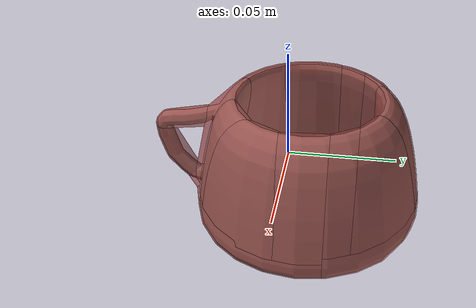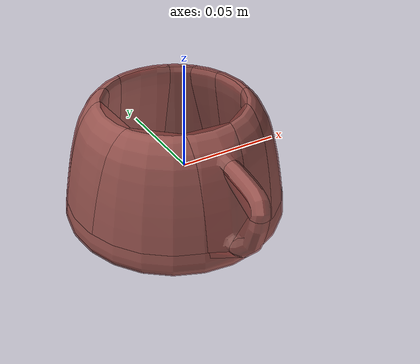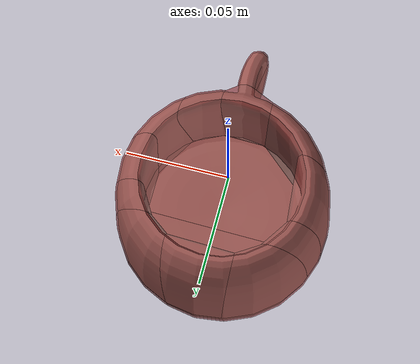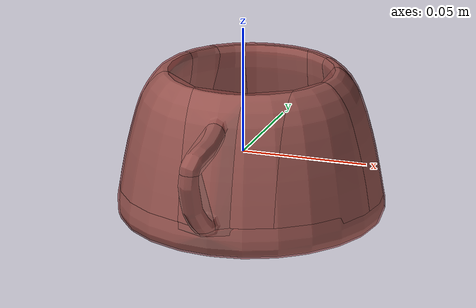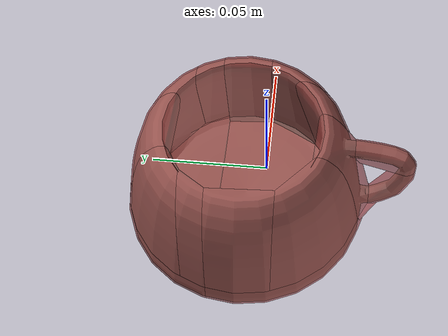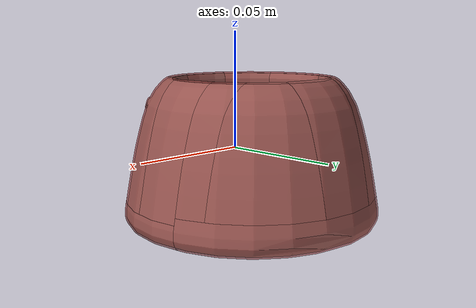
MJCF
<mujoco model="mug_42">
  <asset>
    <mesh file="visual/model_normalized_0.obj" name="model_normalized_0_vis" scale="0.125 0.125 0.125" refquat="0.7071067811865472 0.0 0.0 0.7071067811865476"/>
    <texture type="2d" name="image0" file="visual/image0.png"/>
    <material name="blinn1.013" texture="image0" specular="0.5" shininess="0.16334041"/>
    <mesh file="collision/collision_mesh_collision_0.obj" name="mug_collision_mesh_0" scale="0.125 0.125 0.125" refquat="0.7071067811865472 0.0 0.0 0.7071067811865476"/>
    <mesh file="collision/collision_mesh_collision_1.obj" name="mug_collision_mesh_1" scale="0.125 0.125 0.125" refquat="0.7071067811865472 0.0 0.0 0.7071067811865476"/>
    <mesh file="collision/collision_mesh_collision_2.obj" name="mug_collision_mesh_2" scale="0.125 0.125 0.125" refquat="0.7071067811865472 0.0 0.0 0.7071067811865476"/>
    <mesh file="collision/collision_mesh_collision_3.obj" name="mug_collision_mesh_3" scale="0.125 0.125 0.125" refquat="0.7071067811865472 0.0 0.0 0.7071067811865476"/>
    <mesh file="collision/collision_mesh_collision_4.obj" name="mug_collision_mesh_4" scale="0.125 0.125 0.125" refquat="0.7071067811865472 0.0 0.0 0.7071067811865476"/>
    <mesh file="collision/collision_mesh_collision_5.obj" name="mug_collision_mesh_5" scale="0.125 0.125 0.125" refquat="0.7071067811865472 0.0 0.0 0.7071067811865476"/>
    <mesh file="collision/collision_mesh_collision_6.obj" name="mug_collision_mesh_6" scale="0.125 0.125 0.125" refquat="0.7071067811865472 0.0 0.0 0.7071067811865476"/>
    <mesh file="collision/collision_mesh_collision_7.obj" name="mug_collision_mesh_7" scale="0.125 0.125 0.125" refquat="0.7071067811865472 0.0 0.0 0.7071067811865476"/>
    <mesh file="collision/collision_mesh_collision_8.obj" name="mug_collision_mesh_8" scale="0.125 0.125 0.125" refquat="0.7071067811865472 0.0 0.0 0.7071067811865476"/>
    <mesh file="collision/collision_mesh_collision_9.obj" name="mug_collision_mesh_9" scale="0.125 0.125 0.125" refquat="0.7071067811865472 0.0 0.0 0.7071067811865476"/>
    <mesh file="collision/collision_mesh_collision_10.obj" name="mug_collision_mesh_10" scale="0.125 0.125 0.125" refquat="0.7071067811865472 0.0 0.0 0.7071067811865476"/>
    <mesh file="collision/collision_mesh_collision_11.obj" name="mug_collision_mesh_11" scale="0.125 0.125 0.125" refquat="0.7071067811865472 0.0 0.0 0.7071067811865476"/>
    <mesh file="collision/collision_mesh_collision_12.obj" name="mug_collision_mesh_12" scale="0.125 0.125 0.125" refquat="0.7071067811865472 0.0 0.0 0.7071067811865476"/>
    <mesh file="collision/collision_mesh_collision_13.obj" name="mug_collision_mesh_13" scale="0.125 0.125 0.125" refquat="0.7071067811865472 0.0 0.0 0.7071067811865476"/>
    <mesh file="collision/collision_mesh_collision_14.obj" name="mug_collision_mesh_14" scale="0.125 0.125 0.125" refquat="0.7071067811865472 0.0 0.0 0.7071067811865476"/>
    <mesh file="collision/collision_mesh_collision_15.obj" name="mug_collision_mesh_15" scale="0.125 0.125 0.125" refquat="0.7071067811865472 0.0 0.0 0.7071067811865476"/>
  </asset>
  <default>
    <default class="region">
      <geom group="1" conaffinity="0" contype="0" rgba="0 1 0 0"/>
    </default>
    <default class="collision">
      <geom group="0" rgba="0.5 0 0 0.5" density="1000.0"/>
    </default>
  </default>
  <worldbody>
    <body>
      <body name="object">
        <geom solimp="0.998 0.998 0.001" solref="0.001 1" density="100" friction="0.95 0.3 0.1" type="mesh" mesh="model_normalized_0_vis" conaffinity="0" contype="0" group="1" material="blinn1.013"/>
        <geom class="region" name="reg_bbox" type="box" pos="0.0 1.542687500000195e-05 -1.518999999999826e-05" size="0.0535066425 0.063065808125 0.03140939625"/>
        <geom mesh="mug_collision_mesh_0" type="mesh" class="collision"/>
        <geom mesh="mug_collision_mesh_1" type="mesh" class="collision"/>
        <geom mesh="mug_collision_mesh_2" type="mesh" class="collision"/>
        <geom mesh="mug_collision_mesh_3" type="mesh" class="collision"/>
        <geom mesh="mug_collision_mesh_4" type="mesh" class="collision"/>
        <geom mesh="mug_collision_mesh_5" type="mesh" class="collision"/>
        <geom mesh="mug_collision_mesh_6" type="mesh" class="collision"/>
        <geom mesh="mug_collision_mesh_7" type="mesh" class="collision"/>
        <geom mesh="mug_collision_mesh_8" type="mesh" class="collision"/>
        <geom mesh="mug_collision_mesh_9" type="mesh" class="collision"/>
        <geom mesh="mug_collision_mesh_10" type="mesh" class="collision"/>
        <geom mesh="mug_collision_mesh_11" type="mesh" class="collision"/>
        <geom mesh="mug_collision_mesh_12" type="mesh" class="collision"/>
        <geom mesh="mug_collision_mesh_13" type="mesh" class="collision"/>
        <geom mesh="mug_collision_mesh_14" type="mesh" class="collision"/>
        <geom mesh="mug_collision_mesh_15" type="mesh" class="collision"/>
        <geom rgba="0 0 0 0" size="0.038 0.01" pos="0 0.012 0.01" type="cylinder" name="liquid" class="region"/>
        <geom rgba="0 0 0 0 " size="0.032 0.025" pos="0 0.009 0.005" type="cylinder" name="reg_int" class="region"/>
      </body>
    </body>
  </worldbody>
</mujoco>
